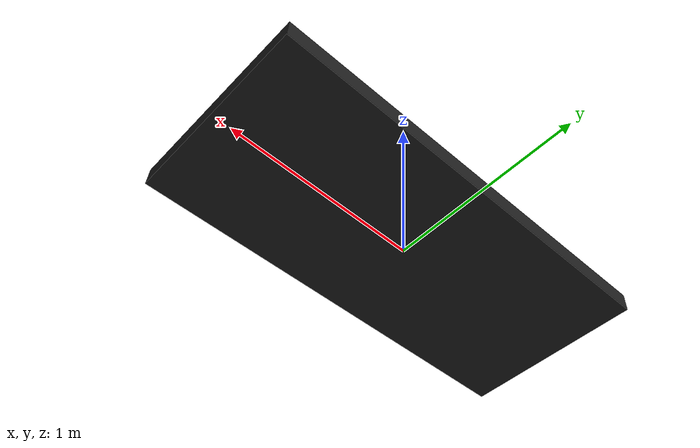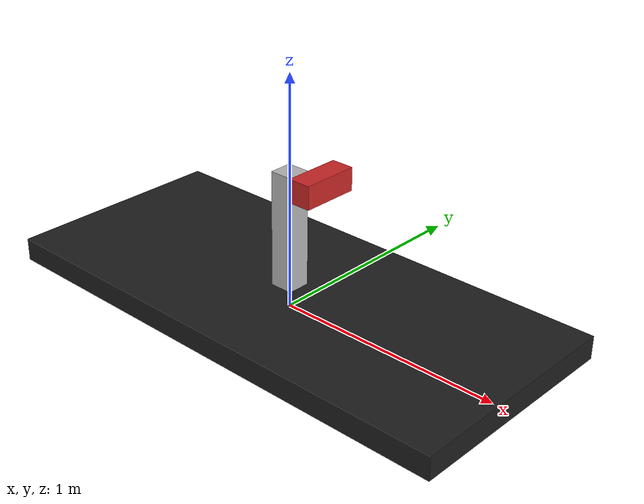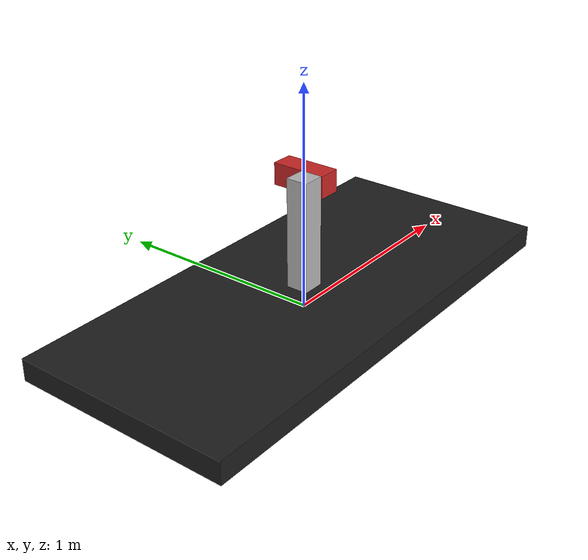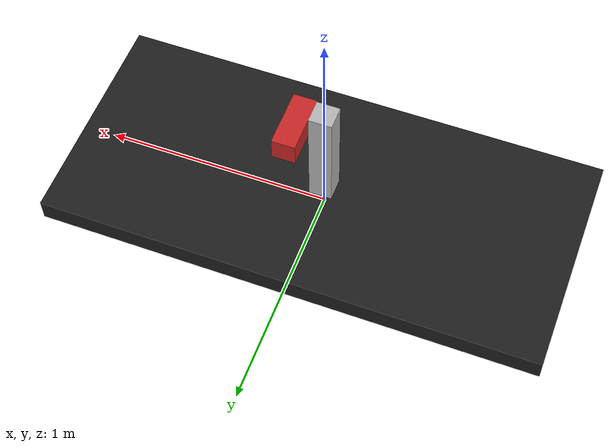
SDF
<?xml version="1.0"?>
<sdf version="1.6">
    <model name="demo_joint_types">
        <link name="heavy_base">
            <!-- position the base such that the bottom touches the floor -->
            <pose>0 0 0.05 0 0 0</pose>
            <inertial>
                <mass>100</mass>                <!-- kg -->
                <inertia>
                    <!-- (mass / 12) * (y*y + z*z) -->
                    <ixx>8.4167</ixx>
                    <ixy>0</ixy>
                    <ixz>0</ixz>
                    <!-- (mass / 12) * (x*x + z*z) -->
                    <iyy>40.417</iyy>
                    <iyz>0</iyz>
                    <!-- (mass / 12) * (y*y + x*x) -->
                    <izz>48.667</izz>
                </inertia>
            </inertial>
            <!-- Same geometry as visual -->
            <collision name="heavy_base_collision">
                <geometry>
                    <box>
                        <size>2.2 1 0.1</size>
                    </box>
                </geometry>
            </collision>
            <!-- Same geometry as collision -->
            <visual name="heavy_base_visual">
                <geometry>
                    <box>
                        <size>2.2 1 0.1</size>
                    </box>
                </geometry>
                <material>
                    <script>
                        <uri>file://media/materials/scripts/gazebo.material</uri>
                        <name>Gazebo/Black</name>
                    </script>
                </material>
            </visual>
        </link>

        <link name="fixed_base">
            <!-- Put the bottom of base on top of the heavy base -->
            <pose >0 0 0.35 0 0 0</pose>
            <inertial>
                <inertia>
                    <!-- (mass / 12) * (y*y + z*z) -->
                    <ixx>0.021667</ixx>
                    <ixy>0</ixy>
                    <ixz>0</ixz>
                    <!-- (mass / 12) * (x*x + z*z) -->
                    <iyy>0.021667</iyy>
                    <iyz>0</iyz>
                    <!-- (mass / 12) * (y*y + x*x) -->
                    <izz>0.0016667</izz>
                </inertia>
            </inertial>
            <!-- Same geometry as visual -->
            <collision name="fixed_base_collision">
                <geometry>
                    <box>
                        <size>0.1 0.1 0.5</size>
                    </box>
                </geometry>
            </collision>
            <!-- Same geometry as collision -->
            <visual name="fixed_base_visual">
                <geometry>
                    <box>
                        <size>0.1 0.1 0.5</size>
                    </box>
                </geometry>
                <material>
                </material>
            </visual>
        </link>
        <link name="fixed_arm">
            <!-- Put the arm near the top of the base -->
            <pose >0.1 0.07 0.55 0 0 0</pose>
            <inertial>
                <inertia>
                    <!-- (mass / 12) * (y*y + z*z) -->
                    <ixx>0.0060417</ixx>
                    <ixy>0</ixy>
                    <ixz>0</ixz>
                    <!-- (mass / 12) * (x*x + z*z) -->
                    <iyy>0.0016667</iyy>
                    <iyz>0</iyz>
                    <!-- (mass / 12) * (y*y + x*x) -->
                    <izz>0.0060417</izz>
                </inertia>
            </inertial>
            <!-- Same geometry as visual -->
            <collision name="fixed_arm_collision">
                <geometry>
                    <box>
                        <size>0.1 0.25 0.1</size>
                    </box>
                </geometry>
            </collision>
            <!-- Same geometry as collision -->
            <visual name="fixed_arm_visual">
                <geometry>
                    <box>
                        <size>0.1 0.25 0.1</size>
                    </box>
                </geometry>
                <material>
                    <script>
                        <uri>file://media/materials/scripts/gazebo.material</uri>
                        <name>Gazebo/Red</name>
                    </script>
                </material>
            </visual>
        </link>

        <joint name="fixed_demo" type="revolute">
            <pose>0 -0.025 0 0 0 0</pose>
            <parent>fixed_base</parent>
            <child>fixed_arm</child>
            <axis>
                <xyz>1 0 0</xyz>
            </axis>
        </joint>

        <joint name="fixed_base_to_heavy_base" type="fixed">
            <parent>heavy_base</parent>
            <child>fixed_base</child>
        </joint>
    </model>
</sdf>
